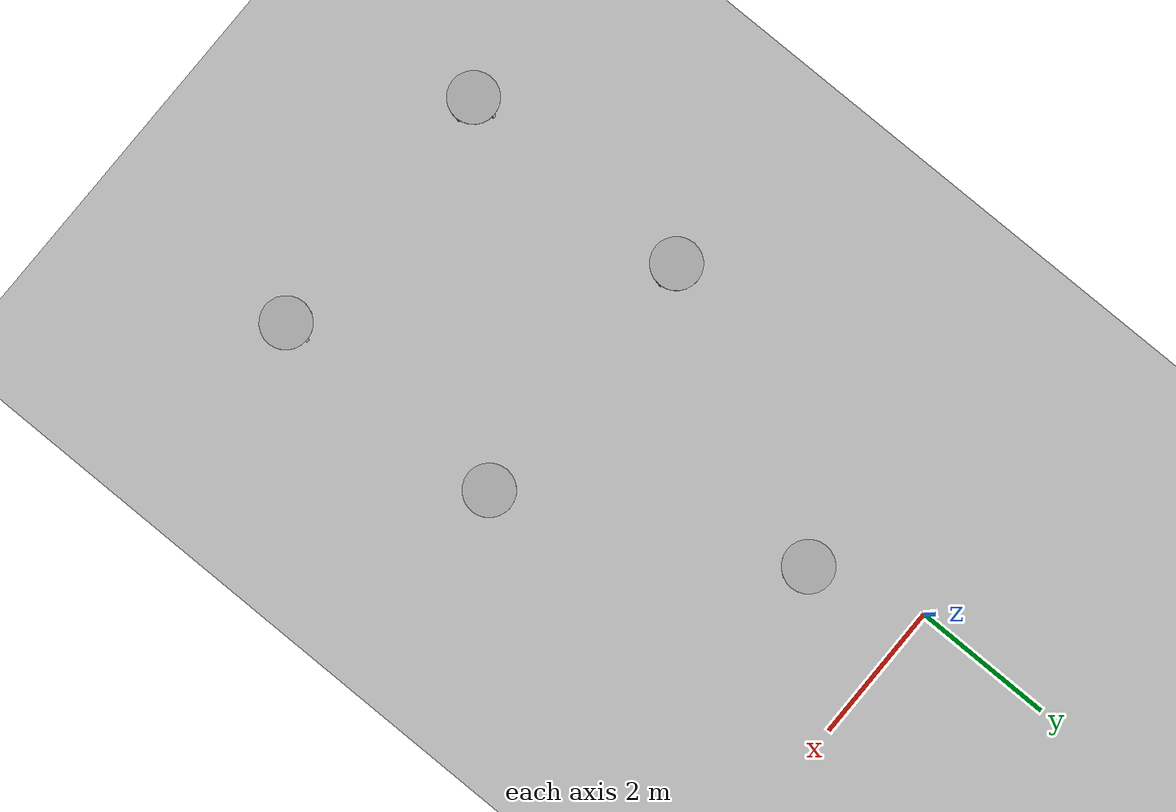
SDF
<sdf version="1.5">
 <world name="default">
  <plugin name="gazebo_ros_state" filename="libgazebo_ros_state.so"><update_rate>1.0</update_rate></plugin>
  <physics type="ode">
   <max_step_size>0.001</max_step_size>
   <real_time_factor>1</real_time_factor>
   <real_time_update_rate>1000</real_time_update_rate>
  </physics>
  <light name="sun" type="directional">
   <pose>0 0 10 0 -0 0</pose>
   <diffuse>0.8 0.8 0.8 1</diffuse>
   <specular>0.2 0.2 0.2 1</specular>
   <attenuation>
    <range>1000</range>
    <constant>0.9</constant>
    <linear>0.01</linear>
    <quadratic>0.001</quadratic>
   </attenuation>
   <direction>0 0.5 -0.9</direction>
  </light>
  <light name="point_light" type="point">
   <pose>0 -0.377195 6.59868 0 -0 0</pose>
   <diffuse>0.784314 0.784314 0.784314 1</diffuse>
   <specular>0.0980392 0.0980392 0.0980392 1</specular>
   <attenuation>
    <range>50</range>
    <constant>0.8</constant>
    <linear>0</linear>
    <quadratic>0.001</quadratic>
   </attenuation>
   <cast_shadows>0</cast_shadows>
   <direction>0 0 -1</direction>
  </light>
  <include><uri>model://ground_plane</uri></include>
  <include><name>table1</name><pose>0.5 -1.6 0.1 0 0 0</pose><uri>model://CoffeeTable</uri></include>
  <include><name>table2</name><pose>2.4 -5.5 0.05 0 0 0</pose><uri>model://CoffeeTable</uri></include>
  <include><name>table3</name><pose>-1.5 -5.5 0.05 0 0 0</pose><uri>model://CoffeeTable</uri></include>
  <include><name>table4</name><pose>2.4 -9 0.05 0 0 0</pose><uri>model://CoffeeTable</uri></include>
  <include><name>table5</name><pose>-1.5 -9 0.05 0 0 0</pose><uri>model://CoffeeTable</uri></include>
 </world>
</sdf>

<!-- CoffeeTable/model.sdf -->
<sdf version="1.6">
  <model name='CoffeeTable'>
    <link name="body">
      <pose>0 0 0 0 0 0</pose>

      <visual name="visual">
        <geometry>
          <mesh>
            <uri>model://CoffeeTable/meshes/CoffeeTable.obj</uri>
            <scale>0.00817 0.00817 0.00817</scale>
          </mesh>
        </geometry>
      </visual>

      <collision name="collision">
        <geometry>
          <mesh>
            <uri>model://CoffeeTable/meshes/CoffeeTable.obj</uri>
            <scale>0.00817 0.00817 0.00817</scale>
          </mesh>
        </geometry>
      </collision>

    </link>
  </model>
</sdf>
